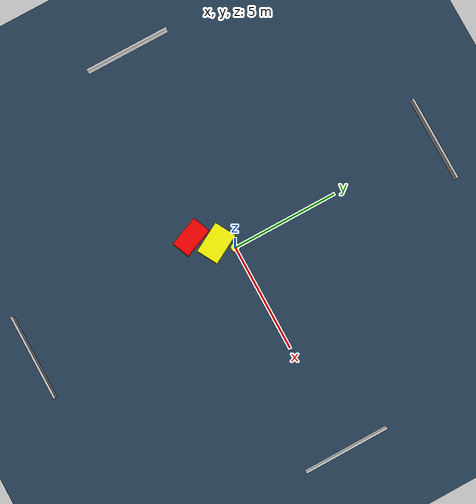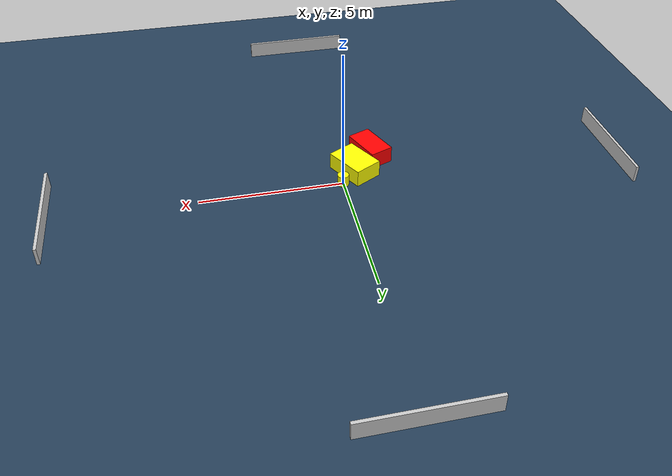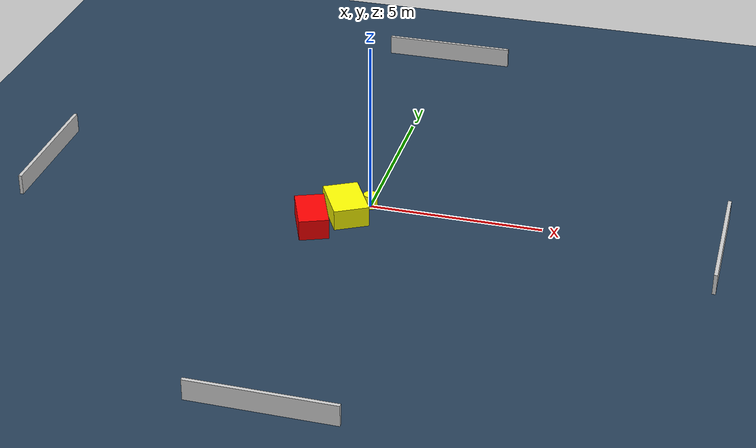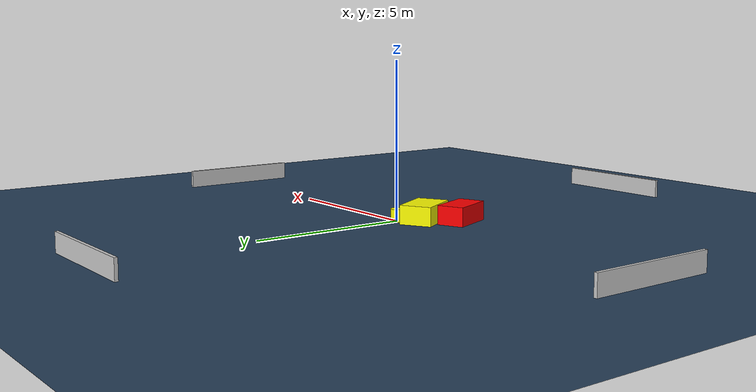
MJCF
<?xml version="1.0" ?>
<mujoco model="generated_environment">
  <option timestep="0.01" integrator="RK4" cone="elliptic"/>
  <default>
    <geom density="1"/>
  </default>
  <asset>
    <texture builtin="gradient" height="3072" name="skybox" rgb1="0.3 0.5 0.7" rgb2="0 0 0" type="skybox" width="512"/>
    <texture builtin="checker" height="300" name="groundplane" rgb1="0.2 0.3 0.4" rgb2="0.1 0.2 0.3" type="2d" width="300"/>
    <material name="groundplane" reflectance="0.2" texrepeat="5 5" texture="groundplane"/>
  </asset>
  <worldbody>
    <light dir="0 0 -1" directional="true" pos="0 0 1.5"/>
    <geom condim="3" friction="0.5 0.005 0.001" material="groundplane" name="floor" pos="0 0 0" size="0 0 0.05" type="plane"/>
    <body name="walls">
      <geom name="wall_1" condim="4" pos="-10.0 0.0 0.3" rgba="0.800000011920929 0.800000011920929 0.800000011920929 1.0" size="0.05 2.0 0.3" type="box"/>
      <geom name="wall_2" condim="4" pos="10.0 0.0 0.3" rgba="0.800000011920929 0.800000011920929 0.800000011920929 1.0" size="0.05 2.0 0.3" type="box"/>
      <geom name="wall_3" condim="4" pos="0.0 -10.0 0.3" rgba="0.800000011920929 0.800000011920929 0.800000011920929 1.0" size="2.0 0.05 0.3" type="box"/>
      <geom name="wall_4" condim="4" pos="0.0 10.0 0.3" rgba="0.800000011920929 0.800000011920929 0.800000011920929 1.0" size="2.0 0.05 0.3" type="box"/>
    </body>
    <body name="robot">
      <joint name="joint_x" type="slide" pos="0 0 0" axis="1 0 0"/>
      <joint name="joint_y" type="slide" pos="0 0 0" axis="0 1 0"/>
      <geom name="robot" type="cylinder" pos="0.0 0.0 0.2" size="0.2 0.2 0.0" mass="5.0" friction="1.0 0.005 0.0001" condim="4" rgba="1.0 1.0 0.0 1.0"/>
    </body>
    <body name="obstacle_1_movable">
      <geom name="obstacle_1_movable" condim="4" pos="-0.5526388146783588 -0.6464943896459519 0.3" euler="0 0 28.779513407533017" friction="0.0 0.005 0.001" rgba="1.0 1.0 0.0 1.0" size="0.5097994453544462 0.7393003725685112 0.3" type="box" mass="0.1"/>
      <joint type="free"/>
    </body>
    <body name="obstacle_2_static">
      <geom name="obstacle_2_static" condim="4" pos="-1.3151001927156492 -1.4884748994439454 0.3" euler="0 0 292.1423196862689" friction="0.0 0.005 0.001" rgba="1.0 0.0 0.0 1.0" size="0.7262196478310086 0.42494773783821443 0.3" type="box"/>
    </body>
  </worldbody>
  <actuator>
    <motor name="actuator_x" joint="joint_x" gear="1" ctrlrange="-1 1"/>
    <motor name="actuator_y" joint="joint_y" gear="1" ctrlrange="-1 1"/>
  </actuator>
</mujoco>
